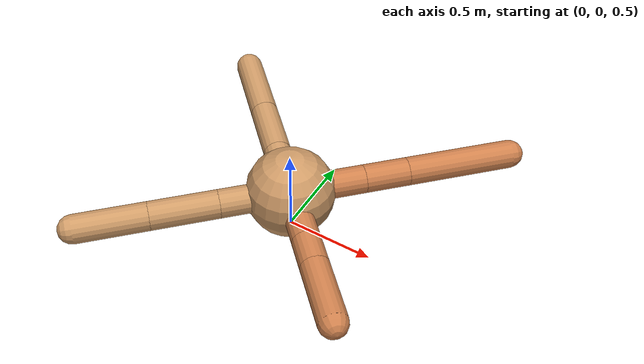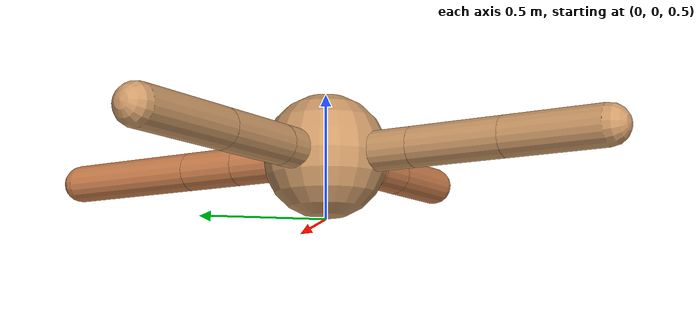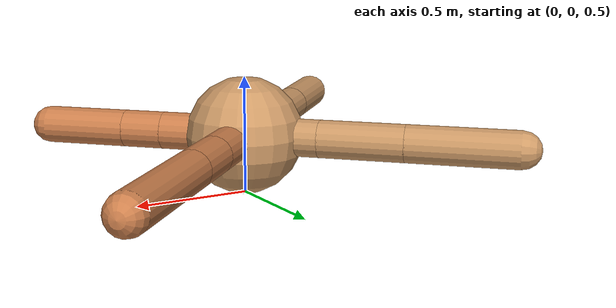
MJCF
<mujoco model="ant">
  <compiler angle="degree" coordinate="local" inertiafromgeom="true" />
  <option integrator="RK4" timestep="0.01" />
  <custom>
    <numeric data="0.0 0.0 0.55 1.0 0.0 0.0 0.0 0.0 1.0 0.0 -1.0 0.0 -1.0 0.0 1.0" name="init_qpos" />
  </custom>
  <default>
    <joint armature="1" damping="1" limited="true" />
    <geom conaffinity="0" condim="3" density="5.0" friction="1.5 0.1 0.1" margin="0.01" rgba="0.8 0.6 0.4 1" />
  </default>
  <worldbody>
    <body name="torso" pos="0 0 0.75">
      <geom name="torso_geom" pos="0 0 0" size="0.25" type="sphere" />

      <body name="front_left_leg" pos="0 0 0">
        <geom fromto="0.0 0.0 0.0 0.2972620163932253 0.2972620163932253 0.0" name="aux_1_geom" size="0.08" type="capsule" rgba=".8 .5 .3 1" />
        <body name="aux_1" pos="0.2972620163932253 0.2972620163932253 0.0">
          <joint axis="0 0 1" name="hip_1" pos="0.0 0.0 0.0" range="-40 40" type="hinge" />
          <geom fromto="0.0 0.0 0.0 0.17746244385434118 0.17746244385434118 0.0" name="left_leg_geom" size="0.08" type="capsule" rgba=".8 .5 .3 1" />
          <body pos="0.17746244385434118 0.17746244385434118 0.0" name="front_left_foot">
            <joint axis="-1 1 0" name="ankle_1" pos="0.0 0.0 0.0" range="30 100" type="hinge" />
            <geom fromto="0.0 0.0 0.0 0.43394078755826454 0.43394078755826454 0.0" name="left_ankle_geom" size="0.08" type="capsule" rgba=".8 .5 .3 1" />
          </body>
        </body>
      </body>
      <body name="front_right_leg" pos="0 0 0">
        <geom fromto="0.0 0.0 0.0 -0.23024065394997778 0.23024065394997778 0.0" name="aux_2_geom" size="0.08" type="capsule" />
        <body name="aux_2" pos="-0.23024065394997778 0.23024065394997778 0.0">
          <joint axis="0 0 1" name="hip_2" pos="0.0 0.0 0.0" range="-40 40" type="hinge" />
          <geom fromto="0.0 0.0 0.0 -0.25621108816698135 0.25621108816698135 0.0" name="right_leg_geom" size="0.08" type="capsule" />
          <body pos="-0.25621108816698135 0.25621108816698135 0.0" name="front_right_foot">
            <joint axis="1 1 0" name="ankle_2" pos="0.0 0.0 0.0" range="-100 -30" type="hinge" />
            <geom fromto="0.0 0.0 0.0 -0.33035145351484496 0.33035145351484496 0.0" name="right_ankle_geom" size="0.08" type="capsule" />
          </body>
        </body>
      </body>
      <body name="left_back_leg" pos="0 0 0">
        <geom fromto="0.0 0.0 0.0 -0.28004326948075947 -0.28004326948075947 0.0" name="aux_3_geom" size="0.08" type="capsule" />
        <body name="aux_3" pos="-0.28004326948075947 -0.28004326948075947 0.0">
          <joint axis="0 0 1" name="hip_3" pos="0.0 0.0 0.0" range="-40 40" type="hinge" />
          <geom fromto="0.0 0.0 0.0 -0.26860232548793833 -0.26860232548793833 0.0" name="back_leg_geom" size="0.08" type="capsule" />
          <body pos="-0.26860232548793833 -0.26860232548793833 0.0" name="left_back_foot">
            <joint axis="-1 1 0" name="ankle_3" pos="0.0 0.0 0.0" range="-100 -30" type="hinge" />
            <geom fromto="0.0 0.0 0.0 -0.2841678248668978 -0.2841678248668978 0.0" name="third_ankle_geom" size="0.08" type="capsule" />
          </body>
        </body>
      </body>
      <body name="right_back_leg" pos="0 0 0">
        <geom fromto="0.0 0.0 0.0 0.25731705210552697 -0.25731705210552697 0.0" name="aux_4_geom" size="0.08" type="capsule" rgba=".8 .5 .3 1" />
        <body name="aux_4" pos="0.25731705210552697 -0.25731705210552697 0.0">
          <joint axis="0 0 1" name="hip_4" pos="0.0 0.0 0.0" range="-40 40" type="hinge" />
          <geom fromto="0.0 0.0 0.0 0.12347476864056717 -0.12347476864056717 0.0" name="rightback_leg_geom" size="0.08" type="capsule" rgba=".8 .5 .3 1" />
          <body pos="0.12347476864056717 -0.12347476864056717 0.0" name="right_back_foot">
            <joint axis="1 1 0" name="ankle_4" pos="0.0 0.0 0.0" range="30 100" type="hinge" />
            <geom fromto="0.0 0.0 0.0 0.25465474330064763 -0.25465474330064763 0.0" name="fourth_ankle_geom" size="0.08" type="capsule" rgba=".8 .5 .3 1" />
          </body>
        </body>
      </body>
    </body>
  </worldbody>
  <actuator>
    <motor ctrllimited="true" ctrlrange="-1.0 1.0" joint="hip_4" gear="150" />
    <motor ctrllimited="true" ctrlrange="-1.0 1.0" joint="ankle_4" gear="150" />
    <motor ctrllimited="true" ctrlrange="-1.0 1.0" joint="hip_1" gear="150" />
    <motor ctrllimited="true" ctrlrange="-1.0 1.0" joint="ankle_1" gear="150" />
    <motor ctrllimited="true" ctrlrange="-1.0 1.0" joint="hip_2" gear="150" />
    <motor ctrllimited="true" ctrlrange="-1.0 1.0" joint="ankle_2" gear="150" />
    <motor ctrllimited="true" ctrlrange="-1.0 1.0" joint="hip_3" gear="150" />
    <motor ctrllimited="true" ctrlrange="-1.0 1.0" joint="ankle_3" gear="150" />
  </actuator>
</mujoco>
